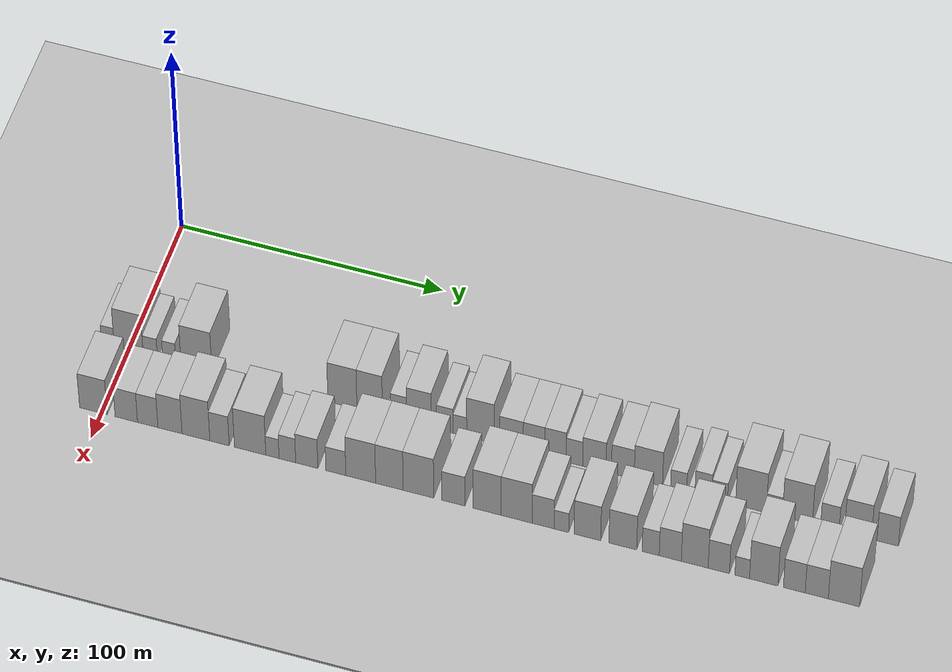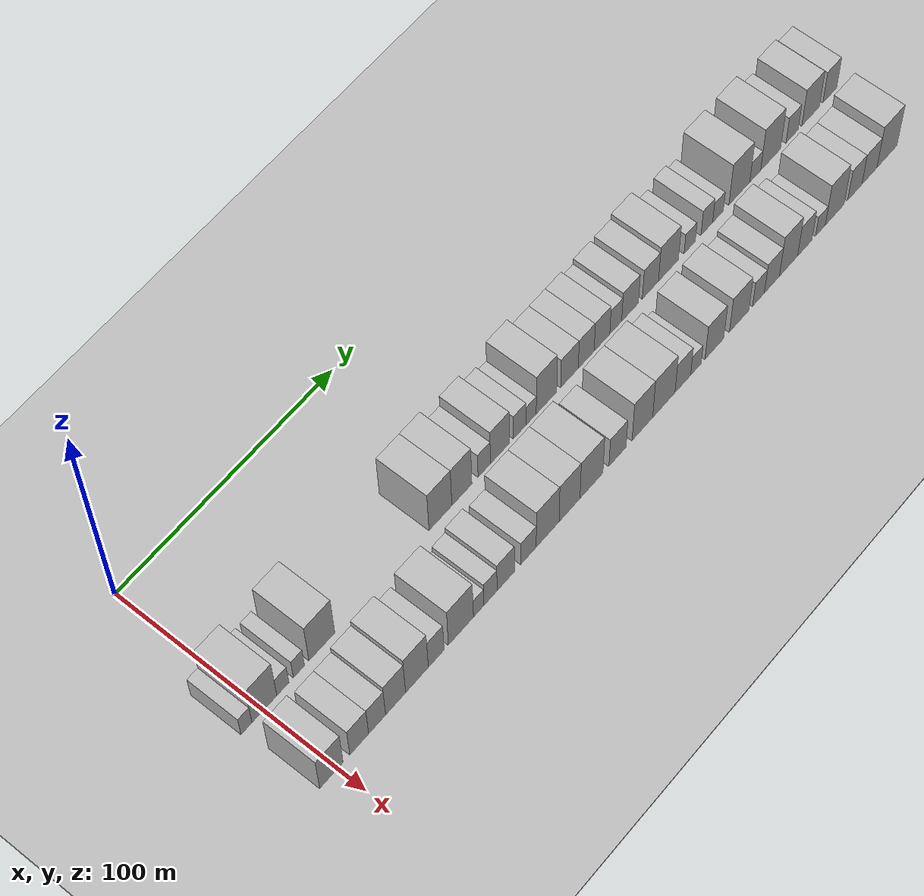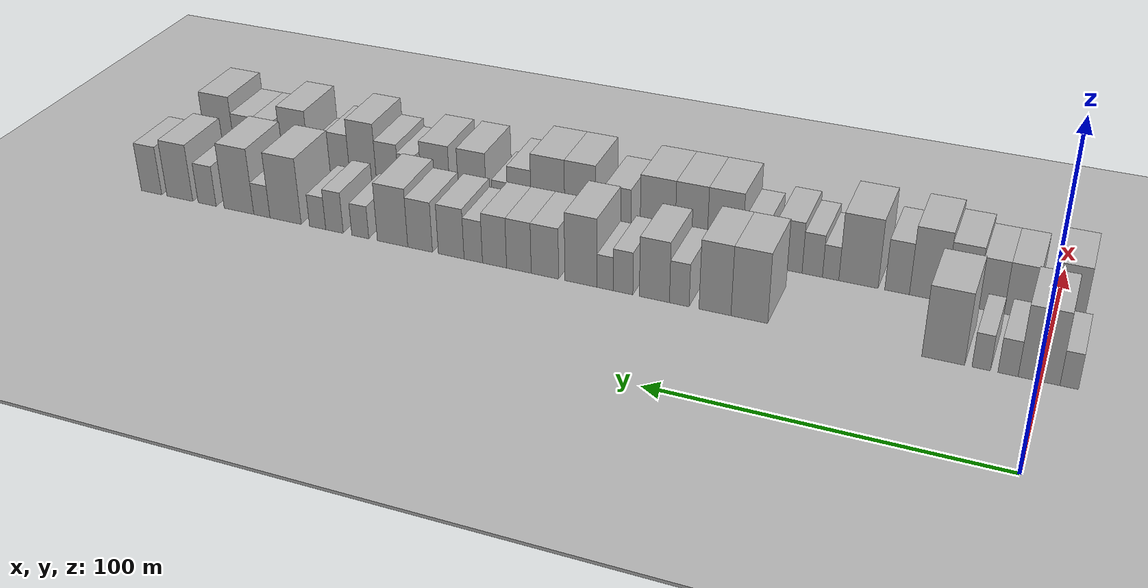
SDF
<sdf version="1.6">
 <world name="default">
  <include><name>ground_plane_1</name><uri>model://HANNAS_ground_plane</uri></include>
  <include>
   <name>ground_plane_2</name>
   <uri>model://HANNAS_ground_plane</uri>
   <pose>100 0 0  0 0 0</pose>
  </include>
  <model name="building_31">
   <static>1</static>
   <pose>50.0000 -7.6204 0 0.000000 0.000000 0.000000</pose>
   <link name="link">
    <pose>0 0 6.00 0 0 0</pose>
    <collision name="collision"><geometry><box><size>20.0000 4.8705 12.0000</size></box></geometry></collision>
    <visual name="visual">
     <cast_shadows>0</cast_shadows>
     <geometry><box><size>20.0000 4.8705 12.0000</size></box></geometry>
     <material>
      <script>
       <uri>model://HANNAS_wall/materials/scripts</uri>
       <uri>model://HANNAS_wall/materials/textures</uri>
       <name>vrc/HANNAS_wall</name>
      </script>
     </material>
    </visual>
   </link>
  </model>
  <model name="building_32">
   <static>1</static>
   <pose>50.0000 0.3281 0 0.000000 0.000000 0.000000</pose>
   <link name="link">
    <pose>0 0 12.00 0 0 0</pose>
    <collision name="collision"><geometry><box><size>20.0000 11.0267 24.0000</size></box></geometry></collision>
    <visual name="visual">
     <cast_shadows>0</cast_shadows>
     <geometry><box><size>20.0000 11.0267 24.0000</size></box></geometry>
     <material>
      <script>
       <uri>model://HANNAS_wall/materials/scripts</uri>
       <uri>model://HANNAS_wall/materials/textures</uri>
       <name>vrc/HANNAS_wall</name>
      </script>
     </material>
    </visual>
   </link>
  </model>
  <model name="building_33">
   <static>1</static>
   <pose>50.0000 8.5430 0 0.000000 0.000000 0.000000</pose>
   <link name="link">
    <pose>0 0 6.00 0 0 0</pose>
    <collision name="collision"><geometry><box><size>20.0000 5.4030 12.0000</size></box></geometry></collision>
    <visual name="visual">
     <cast_shadows>0</cast_shadows>
     <geometry><box><size>20.0000 5.4030 12.0000</size></box></geometry>
     <material>
      <script>
       <uri>model://HANNAS_wall/materials/scripts</uri>
       <uri>model://HANNAS_wall/materials/textures</uri>
       <name>vrc/HANNAS_wall</name>
      </script>
     </material>
    </visual>
   </link>
  </model>
  <model name="building_34">
   <static>1</static>
   <pose>50.0000 15.7394 0 0.000000 0.000000 0.000000</pose>
   <link name="link">
    <pose>0 0 6.00 0 0 0</pose>
    <collision name="collision"><geometry><box><size>20.0000 4.9897 12.0000</size></box></geometry></collision>
    <visual name="visual">
     <cast_shadows>0</cast_shadows>
     <geometry><box><size>20.0000 4.9897 12.0000</size></box></geometry>
     <material>
      <script>
       <uri>model://HANNAS_wall/materials/scripts</uri>
       <uri>model://HANNAS_wall/materials/textures</uri>
       <name>vrc/HANNAS_wall</name>
      </script>
     </material>
    </visual>
   </link>
  </model>
  <model name="building_35">
   <static>1</static>
   <pose>50.0000 26.1092 0 0.000000 0.000000 0.000000</pose>
   <link name="link">
    <pose>0 0 12.00 0 0 0</pose>
    <collision name="collision"><geometry><box><size>20.0000 11.7500 24.0000</size></box></geometry></collision>
    <visual name="visual">
     <cast_shadows>0</cast_shadows>
     <geometry><box><size>20.0000 11.7500 24.0000</size></box></geometry>
     <material>
      <script>
       <uri>model://HANNAS_wall/materials/scripts</uri>
       <uri>model://HANNAS_wall/materials/textures</uri>
       <name>vrc/HANNAS_wall</name>
      </script>
     </material>
    </visual>
   </link>
  </model>
  <model name="building_36">
   <static>1</static>
   <pose>50.0000 81.3536 0 0.000000 0.000000 0.000000</pose>
   <link name="link">
    <pose>0 0 12.00 0 0 0</pose>
    <collision name="collision"><geometry><box><size>20.0000 10.9129 24.0000</size></box></geometry></collision>
    <visual name="visual">
     <cast_shadows>0</cast_shadows>
     <geometry><box><size>20.0000 10.9129 24.0000</size></box></geometry>
     <material>
      <script>
       <uri>model://HANNAS_wall/materials/scripts</uri>
       <uri>model://HANNAS_wall/materials/textures</uri>
       <name>vrc/HANNAS_wall</name>
      </script>
     </material>
    </visual>
   </link>
  </model>
  <model name="building_37">
   <static>1</static>
   <pose>50.0000 91.6201 0 0.000000 0.000000 0.000000</pose>
   <link name="link">
    <pose>0 0 12.00 0 0 0</pose>
    <collision name="collision"><geometry><box><size>20.0000 9.6200 24.0000</size></box></geometry></collision>
    <visual name="visual">
     <cast_shadows>0</cast_shadows>
     <geometry><box><size>20.0000 9.6200 24.0000</size></box></geometry>
     <material>
      <script>
       <uri>model://HANNAS_wall/materials/scripts</uri>
       <uri>model://HANNAS_wall/materials/textures</uri>
       <name>vrc/HANNAS_wall</name>
      </script>
     </material>
    </visual>
   </link>
  </model>
  <model name="building_38">
   <static>1</static>
   <pose>50.0000 102.4375 0 0.000000 0.000000 0.000000</pose>
   <link name="link">
    <pose>0 0 7.50 0 0 0</pose>
    <collision name="collision"><geometry><box><size>20.0000 6.0148 15.0000</size></box></geometry></collision>
    <visual name="visual">
     <cast_shadows>0</cast_shadows>
     <geometry><box><size>20.0000 6.0148 15.0000</size></box></geometry>
     <material>
      <script>
       <uri>model://HANNAS_wall/materials/scripts</uri>
       <uri>model://HANNAS_wall/materials/textures</uri>
       <name>vrc/HANNAS_wall</name>
      </script>
     </material>
    </visual>
   </link>
  </model>
  <model name="building_39">
   <static>1</static>
   <pose>50.0000 110.0867 0 0.000000 0.000000 0.000000</pose>
   <link name="link">
    <pose>0 0 10.50 0 0 0</pose>
    <collision name="collision"><geometry><box><size>20.0000 9.2836 21.0000</size></box></geometry></collision>
    <visual name="visual">
     <cast_shadows>0</cast_shadows>
     <geometry><box><size>20.0000 9.2836 21.0000</size></box></geometry>
     <material>
      <script>
       <uri>model://HANNAS_wall/materials/scripts</uri>
       <uri>model://HANNAS_wall/materials/textures</uri>
       <name>vrc/HANNAS_wall</name>
      </script>
     </material>
    </visual>
   </link>
  </model>
  <model name="building_40">
   <static>1</static>
   <pose>50.0000 119.8254 0 0.000000 0.000000 0.000000</pose>
   <link name="link">
    <pose>0 0 7.50 0 0 0</pose>
    <collision name="collision"><geometry><box><size>20.0000 6.1937 15.0000</size></box></geometry></collision>
    <visual name="visual">
     <cast_shadows>0</cast_shadows>
     <geometry><box><size>20.0000 6.1937 15.0000</size></box></geometry>
     <material>
      <script>
       <uri>model://HANNAS_wall/materials/scripts</uri>
       <uri>model://HANNAS_wall/materials/textures</uri>
       <name>vrc/HANNAS_wall</name>
      </script>
     </material>
    </visual>
   </link>
  </model>
  <model name="building_41">
   <static>1</static>
   <pose>50.0000 125.4484 0 0.000000 0.000000 0.000000</pose>
   <link name="link">
    <pose>0 0 6.00 0 0 0</pose>
    <collision name="collision"><geometry><box><size>20.0000 5.0524 12.0000</size></box></geometry></collision>
    <visual name="visual">
     <cast_shadows>0</cast_shadows>
     <geometry><box><size>20.0000 5.0524 12.0000</size></box></geometry>
     <material>
      <script>
       <uri>model://HANNAS_wall/materials/scripts</uri>
       <uri>model://HANNAS_wall/materials/textures</uri>
       <name>vrc/HANNAS_wall</name>
      </script>
     </material>
    </visual>
   </link>
  </model>
  <model name="building_42">
   <static>1</static>
   <pose>50.0000 133.0787 0 0.000000 0.000000 0.000000</pose>
   <link name="link">
    <pose>0 0 12.00 0 0 0</pose>
    <collision name="collision"><geometry><box><size>20.0000 10.2081 24.0000</size></box></geometry></collision>
    <visual name="visual">
     <cast_shadows>0</cast_shadows>
     <geometry><box><size>20.0000 10.2081 24.0000</size></box></geometry>
     <material>
      <script>
       <uri>model://HANNAS_wall/materials/scripts</uri>
       <uri>model://HANNAS_wall/materials/textures</uri>
       <name>vrc/HANNAS_wall</name>
      </script>
     </material>
    </visual>
   </link>
  </model>
  <model name="building_43">
   <static>1</static>
   <pose>50.0000 144.6121 0 0.000000 0.000000 0.000000</pose>
   <link name="link">
    <pose>0 0 9.00 0 0 0</pose>
    <collision name="collision"><geometry><box><size>20.0000 8.8586 18.0000</size></box></geometry></collision>
    <visual name="visual">
     <cast_shadows>0</cast_shadows>
     <geometry><box><size>20.0000 8.8586 18.0000</size></box></geometry>
     <material>
      <script>
       <uri>model://HANNAS_wall/materials/scripts</uri>
       <uri>model://HANNAS_wall/materials/textures</uri>
       <name>vrc/HANNAS_wall</name>
      </script>
     </material>
    </visual>
   </link>
  </model>
  <model name="building_44">
   <static>1</static>
   <pose>50.0000 153.0716 0 0.000000 0.000000 0.000000</pose>
   <link name="link">
    <pose>0 0 9.00 0 0 0</pose>
    <collision name="collision"><geometry><box><size>20.0000 8.0604 18.0000</size></box></geometry></collision>
    <visual name="visual">
     <cast_shadows>0</cast_shadows>
     <geometry><box><size>20.0000 8.0604 18.0000</size></box></geometry>
     <material>
      <script>
       <uri>model://HANNAS_wall/materials/scripts</uri>
       <uri>model://HANNAS_wall/materials/textures</uri>
       <name>vrc/HANNAS_wall</name>
      </script>
     </material>
    </visual>
   </link>
  </model>
  <model name="building_45">
   <static>1</static>
   <pose>50.0000 161.0884 0 0.000000 0.000000 0.000000</pose>
   <link name="link">
    <pose>0 0 9.00 0 0 0</pose>
    <collision name="collision"><geometry><box><size>20.0000 7.9732 18.0000</size></box></geometry></collision>
    <visual name="visual">
     <cast_shadows>0</cast_shadows>
     <geometry><box><size>20.0000 7.9732 18.0000</size></box></geometry>
     <material>
      <script>
       <uri>model://HANNAS_wall/materials/scripts</uri>
       <uri>model://HANNAS_wall/materials/textures</uri>
       <name>vrc/HANNAS_wall</name>
      </script>
     </material>
    </visual>
   </link>
  </model>
  <model name="building_46">
   <static>1</static>
   <pose>50.0000 168.1415 0 0.000000 0.000000 0.000000</pose>
   <link name="link">
    <pose>0 0 7.50 0 0 0</pose>
    <collision name="collision"><geometry><box><size>20.0000 6.1328 15.0000</size></box></geometry></collision>
    <visual name="visual">
     <cast_shadows>0</cast_shadows>
     <geometry><box><size>20.0000 6.1328 15.0000</size></box></geometry>
     <material>
      <script>
       <uri>model://HANNAS_wall/materials/scripts</uri>
       <uri>model://HANNAS_wall/materials/textures</uri>
       <name>vrc/HANNAS_wall</name>
      </script>
     </material>
    </visual>
   </link>
  </model>
  <model name="building_47">
   <static>1</static>
   <pose>50.0000 175.5338 0 0.000000 0.000000 0.000000</pose>
   <link name="link">
    <pose>0 0 9.00 0 0 0</pose>
    <collision name="collision"><geometry><box><size>20.0000 8.6520 18.0000</size></box></geometry></collision>
    <visual name="visual">
     <cast_shadows>0</cast_shadows>
     <geometry><box><size>20.0000 8.6520 18.0000</size></box></geometry>
     <material>
      <script>
       <uri>model://HANNAS_wall/materials/scripts</uri>
       <uri>model://HANNAS_wall/materials/textures</uri>
       <name>vrc/HANNAS_wall</name>
      </script>
     </material>
    </visual>
   </link>
  </model>
  <model name="building_48">
   <static>1</static>
   <pose>50.0000 186.0772 0 0.000000 0.000000 0.000000</pose>
   <link name="link">
    <pose>0 0 9.00 0 0 0</pose>
    <collision name="collision"><geometry><box><size>20.0000 8.4348 18.0000</size></box></geometry></collision>
    <visual name="visual">
     <cast_shadows>0</cast_shadows>
     <geometry><box><size>20.0000 8.4348 18.0000</size></box></geometry>
     <material>
      <script>
       <uri>model://HANNAS_wall/materials/scripts</uri>
       <uri>model://HANNAS_wall/materials/textures</uri>
       <name>vrc/HANNAS_wall</name>
      </script>
     </material>
    </visual>
   </link>
  </model>
  <model name="building_49">
   <static>1</static>
   <pose>50.0000 195.5442 0 0.000000 0.000000 0.000000</pose>
   <link name="link">
    <pose>0 0 10.50 0 0 0</pose>
    <collision name="collision"><geometry><box><size>20.0000 10.4991 21.0000</size></box></geometry></collision>
    <visual name="visual">
     <cast_shadows>0</cast_shadows>
     <geometry><box><size>20.0000 10.4991 21.0000</size></box></geometry>
     <material>
      <script>
       <uri>model://HANNAS_wall/materials/scripts</uri>
       <uri>model://HANNAS_wall/materials/textures</uri>
       <name>vrc/HANNAS_wall</name>
      </script>
     </material>
    </visual>
   </link>
  </model>
  <model name="building_50">
   <static>1</static>
   <pose>50.0000 206.7703 0 0.000000 0.000000 0.000000</pose>
   <link name="link">
    <pose>0 0 6.00 0 0 0</pose>
    <collision name="collision"><geometry><box><size>20.0000 5.9532 12.0000</size></box></geometry></collision>
    <visual name="visual">
     <cast_shadows>0</cast_shadows>
     <geometry><box><size>20.0000 5.9532 12.0000</size></box></geometry>
     <material>
      <script>
       <uri>model://HANNAS_wall/materials/scripts</uri>
       <uri>model://HANNAS_wall/materials/textures</uri>
       <name>vrc/HANNAS_wall</name>
      </script>
     </material>
    </visual>
   </link>
  </model>
  <model name="building_51">
   <static>1</static>
   <pose>50.0000 215.8573 0 0.000000 0.000000 0.000000</pose>
   <link name="link">
    <pose>0 0 7.50 0 0 0</pose>
    <collision name="collision"><geometry><box><size>20.0000 6.2208 15.0000</size></box></geometry></collision>
    <visual name="visual">
     <cast_shadows>0</cast_shadows>
     <geometry><box><size>20.0000 6.2208 15.0000</size></box></geometry>
     <material>
      <script>
       <uri>model://HANNAS_wall/materials/scripts</uri>
       <uri>model://HANNAS_wall/materials/textures</uri>
       <name>vrc/HANNAS_wall</name>
      </script>
     </material>
    </visual>
   </link>
  </model>
  <model name="building_52">
   <static>1</static>
   <pose>50.0000 221.8595 0 0.000000 0.000000 0.000000</pose>
   <link name="link">
    <pose>0 0 6.00 0 0 0</pose>
    <collision name="collision"><geometry><box><size>20.0000 5.7837 12.0000</size></box></geometry></collision>
    <visual name="visual">
     <cast_shadows>0</cast_shadows>
     <geometry><box><size>20.0000 5.7837 12.0000</size></box></geometry>
     <material>
      <script>
       <uri>model://HANNAS_wall/materials/scripts</uri>
       <uri>model://HANNAS_wall/materials/textures</uri>
       <name>vrc/HANNAS_wall</name>
      </script>
     </material>
    </visual>
   </link>
  </model>
  <model name="building_53">
   <static>1</static>
   <pose>50.0000 233.4132 0 0.000000 0.000000 0.000000</pose>
   <link name="link">
    <pose>0 0 12.00 0 0 0</pose>
    <collision name="collision"><geometry><box><size>20.0000 11.3236 24.0000</size></box></geometry></collision>
    <visual name="visual">
     <cast_shadows>0</cast_shadows>
     <geometry><box><size>20.0000 11.3236 24.0000</size></box></geometry>
     <material>
      <script>
       <uri>model://HANNAS_wall/materials/scripts</uri>
       <uri>model://HANNAS_wall/materials/textures</uri>
       <name>vrc/HANNAS_wall</name>
      </script>
     </material>
    </visual>
   </link>
  </model>
  <model name="building_54">
   <static>1</static>
   <pose>50.0000 242.0458 0 0.000000 0.000000 0.000000</pose>
   <link name="link">
    <pose>0 0 6.00 0 0 0</pose>
    <collision name="collision"><geometry><box><size>20.0000 5.9414 12.0000</size></box></geometry></collision>
    <visual name="visual">
     <cast_shadows>0</cast_shadows>
     <geometry><box><size>20.0000 5.9414 12.0000</size></box></geometry>
     <material>
      <script>
       <uri>model://HANNAS_wall/materials/scripts</uri>
       <uri>model://HANNAS_wall/materials/textures</uri>
       <name>vrc/HANNAS_wall</name>
      </script>
     </material>
    </visual>
   </link>
  </model>
  <model name="building_55">
   <static>1</static>
   <pose>50.0000 250.5030 0 0.000000 0.000000 0.000000</pose>
   <link name="link">
    <pose>0 0 12.00 0 0 0</pose>
    <collision name="collision"><geometry><box><size>20.0000 10.9730 24.0000</size></box></geometry></collision>
    <visual name="visual">
     <cast_shadows>0</cast_shadows>
     <geometry><box><size>20.0000 10.9730 24.0000</size></box></geometry>
     <material>
      <script>
       <uri>model://HANNAS_wall/materials/scripts</uri>
       <uri>model://HANNAS_wall/materials/textures</uri>
       <name>vrc/HANNAS_wall</name>
      </script>
     </material>
    </visual>
   </link>
  </model>
  <model name="building_56">
   <static>1</static>
   <pose>50.0000 262.3821 0 0.000000 0.000000 0.000000</pose>
   <link name="link">
    <pose>0 0 7.50 0 0 0</pose>
    <collision name="collision"><geometry><box><size>20.0000 6.7853 15.0000</size></box></geometry></collision>
    <visual name="visual">
     <cast_shadows>0</cast_shadows>
     <geometry><box><size>20.0000 6.7853 15.0000</size></box></geometry>
     <material>
      <script>
       <uri>model://HANNAS_wall/materials/scripts</uri>
       <uri>model://HANNAS_wall/materials/textures</uri>
       <name>vrc/HANNAS_wall</name>
      </script>
     </material>
    </visual>
   </link>
  </model>
  <model name="building_57">
   <static>1</static>
   <pose>50.0000 272.6930 0 0.000000 0.000000 0.000000</pose>
   <link name="link">
    <pose>0 0 10.50 0 0 0</pose>
    <collision name="collision"><geometry><box><size>20.0000 9.8365 21.0000</size></box></geometry></collision>
    <visual name="visual">
     <cast_shadows>0</cast_shadows>
     <geometry><box><size>20.0000 9.8365 21.0000</size></box></geometry>
     <material>
      <script>
       <uri>model://HANNAS_wall/materials/scripts</uri>
       <uri>model://HANNAS_wall/materials/textures</uri>
       <name>vrc/HANNAS_wall</name>
      </script>
     </material>
    </visual>
   </link>
  </model>
  <model name="building_58">
   <static>1</static>
   <pose>50.0000 283.5262 0 0.000000 0.000000 0.000000</pose>
   <link name="link">
    <pose>0 0 9.00 0 0 0</pose>
    <collision name="collision"><geometry><box><size>20.0000 7.8297 18.0000</size></box></geometry></collision>
    <visual name="visual">
     <cast_shadows>0</cast_shadows>
     <geometry><box><size>20.0000 7.8297 18.0000</size></box></geometry>
     <material>
      <script>
       <uri>model://HANNAS_wall/materials/scripts</uri>
       <uri>model://HANNAS_wall/materials/textures</uri>
       <name>vrc/HANNAS_wall</name>
      </script>
     </material>
    </visual>
   </link>
  </model>
  <model name="building_87">
   <static>1</static>
   <pose>79.0000 -2.9173 0 0.000000 0.000000 0.000000</pose>
   <link name="link">
    <pose>0 0 10.50 0 0 0</pose>
    <collision name="collision"><geometry><box><size>20.0000 10.4414 21.0000</size></box></geometry></collision>
    <visual name="visual">
     <cast_shadows>0</cast_shadows>
     <geometry><box><size>20.0000 10.4414 21.0000</size></box></geometry>
     <material>
      <script>
       <uri>model://HANNAS_wall/materials/scripts</uri>
       <uri>model://HANNAS_wall/materials/textures</uri>
       <name>vrc/HANNAS_wall</name>
      </script>
     </material>
    </visual>
   </link>
  </model>
  <model name="building_88">
   <static>1</static>
   <pose>79.0000 9.5362 0 0.000000 0.000000 0.000000</pose>
   <link name="link">
    <pose>0 0 9.00 0 0 0</pose>
    <collision name="collision"><geometry><box><size>20.0000 8.4656 18.0000</size></box></geometry></collision>
    <visual name="visual">
     <cast_shadows>0</cast_shadows>
     <geometry><box><size>20.0000 8.4656 18.0000</size></box></geometry>
     <material>
      <script>
       <uri>model://HANNAS_wall/materials/scripts</uri>
       <uri>model://HANNAS_wall/materials/textures</uri>
       <name>vrc/HANNAS_wall</name>
      </script>
     </material>
    </visual>
   </link>
  </model>
  <model name="building_89">
   <static>1</static>
   <pose>79.0000 17.6183 0 0.000000 0.000000 0.000000</pose>
   <link name="link">
    <pose>0 0 9.00 0 0 0</pose>
    <collision name="collision"><geometry><box><size>20.0000 7.6988 18.0000</size></box></geometry></collision>
    <visual name="visual">
     <cast_shadows>0</cast_shadows>
     <geometry><box><size>20.0000 7.6988 18.0000</size></box></geometry>
     <material>
      <script>
       <uri>model://HANNAS_wall/materials/scripts</uri>
       <uri>model://HANNAS_wall/materials/textures</uri>
       <name>vrc/HANNAS_wall</name>
      </script>
     </material>
    </visual>
   </link>
  </model>
  <model name="building_90">
   <static>1</static>
   <pose>79.0000 26.0335 0 0.000000 0.000000 0.000000</pose>
   <link name="link">
    <pose>0 0 10.50 0 0 0</pose>
    <collision name="collision"><geometry><box><size>20.0000 9.1314 21.0000</size></box></geometry></collision>
    <visual name="visual">
     <cast_shadows>0</cast_shadows>
     <geometry><box><size>20.0000 9.1314 21.0000</size></box></geometry>
     <material>
      <script>
       <uri>model://HANNAS_wall/materials/scripts</uri>
       <uri>model://HANNAS_wall/materials/textures</uri>
       <name>vrc/HANNAS_wall</name>
      </script>
     </material>
    </visual>
   </link>
  </model>
  <model name="building_91">
   <static>1</static>
   <pose>79.0000 35.8328 0 0.000000 0.000000 0.000000</pose>
   <link name="link">
    <pose>0 0 12.00 0 0 0</pose>
    <collision name="collision"><geometry><box><size>20.0000 10.4672 24.0000</size></box></geometry></collision>
    <visual name="visual">
     <cast_shadows>0</cast_shadows>
     <geometry><box><size>20.0000 10.4672 24.0000</size></box></geometry>
     <material>
      <script>
       <uri>model://HANNAS_wall/materials/scripts</uri>
       <uri>model://HANNAS_wall/materials/textures</uri>
       <name>vrc/HANNAS_wall</name>
      </script>
     </material>
    </visual>
   </link>
  </model>
  <model name="building_92">
   <static>1</static>
   <pose>79.0000 44.7057 0 0.000000 0.000000 0.000000</pose>
   <link name="link">
    <pose>0 0 9.00 0 0 0</pose>
    <collision name="collision"><geometry><box><size>20.0000 7.2788 18.0000</size></box></geometry></collision>
    <visual name="visual">
     <cast_shadows>0</cast_shadows>
     <geometry><box><size>20.0000 7.2788 18.0000</size></box></geometry>
     <material>
      <script>
       <uri>model://HANNAS_wall/materials/scripts</uri>
       <uri>model://HANNAS_wall/materials/textures</uri>
       <name>vrc/HANNAS_wall</name>
      </script>
     </material>
    </visual>
   </link>
  </model>
  <model name="building_93">
   <static>1</static>
   <pose>79.0000 56.2379 0 0.000000 0.000000 0.000000</pose>
   <link name="link">
    <pose>0 0 12.00 0 0 0</pose>
    <collision name="collision"><geometry><box><size>20.0000 11.7855 24.0000</size></box></geometry></collision>
    <visual name="visual">
     <cast_shadows>0</cast_shadows>
     <geometry><box><size>20.0000 11.7855 24.0000</size></box></geometry>
     <material>
      <script>
       <uri>model://HANNAS_wall/materials/scripts</uri>
       <uri>model://HANNAS_wall/materials/textures</uri>
       <name>vrc/HANNAS_wall</name>
      </script>
     </material>
    </visual>
   </link>
  </model>
  <model name="building_94">
   <static>1</static>
   <pose>79.0000 64.6106 0 0.000000 0.000000 0.000000</pose>
   <link name="link">
    <pose>0 0 6.00 0 0 0</pose>
    <collision name="collision"><geometry><box><size>20.0000 4.9600 12.0000</size></box></geometry></collision>
    <visual name="visual">
     <cast_shadows>0</cast_shadows>
     <geometry><box><size>20.0000 4.9600 12.0000</size></box></geometry>
     <material>
      <script>
       <uri>model://HANNAS_wall/materials/scripts</uri>
       <uri>model://HANNAS_wall/materials/textures</uri>
       <name>vrc/HANNAS_wall</name>
      </script>
     </material>
    </visual>
   </link>
  </model>
  <model name="building_95">
   <static>1</static>
   <pose>79.0000 70.2142 0 0.000000 0.000000 0.000000</pose>
   <link name="link">
    <pose>0 0 7.50 0 0 0</pose>
    <collision name="collision"><geometry><box><size>20.0000 6.2472 15.0000</size></box></geometry></collision>
    <visual name="visual">
     <cast_shadows>0</cast_shadows>
     <geometry><box><size>20.0000 6.2472 15.0000</size></box></geometry>
     <material>
      <script>
       <uri>model://HANNAS_wall/materials/scripts</uri>
       <uri>model://HANNAS_wall/materials/textures</uri>
       <name>vrc/HANNAS_wall</name>
      </script>
     </material>
    </visual>
   </link>
  </model>
  <model name="building_96">
   <static>1</static>
   <pose>79.0000 77.4870 0 0.000000 0.000000 0.000000</pose>
   <link name="link">
    <pose>0 0 9.00 0 0 0</pose>
    <collision name="collision"><geometry><box><size>20.0000 8.2982 18.0000</size></box></geometry></collision>
    <visual name="visual">
     <cast_shadows>0</cast_shadows>
     <geometry><box><size>20.0000 8.2982 18.0000</size></box></geometry>
     <material>
      <script>
       <uri>model://HANNAS_wall/materials/scripts</uri>
       <uri>model://HANNAS_wall/materials/textures</uri>
       <name>vrc/HANNAS_wall</name>
      </script>
     </material>
    </visual>
   </link>
  </model>
  <model name="building_97">
   <static>1</static>
   <pose>79.0000 88.3670 0 0.000000 0.000000 0.000000</pose>
   <link name="link">
    <pose>0 0 7.50 0 0 0</pose>
    <collision name="collision"><geometry><box><size>20.0000 7.4618 15.0000</size></box></geometry></collision>
    <visual name="visual">
     <cast_shadows>0</cast_shadows>
     <geometry><box><size>20.0000 7.4618 15.0000</size></box></geometry>
     <material>
      <script>
       <uri>model://HANNAS_wall/materials/scripts</uri>
       <uri>model://HANNAS_wall/materials/textures</uri>
       <name>vrc/HANNAS_wall</name>
      </script>
     </material>
    </visual>
   </link>
  </model>
  <model name="building_98">
   <static>1</static>
   <pose>79.0000 97.6599 0 0.000000 0.000000 0.000000</pose>
   <link name="link">
    <pose>0 0 12.00 0 0 0</pose>
    <collision name="collision"><geometry><box><size>20.0000 11.1241 24.0000</size></box></geometry></collision>
    <visual name="visual">
     <cast_shadows>0</cast_shadows>
     <geometry><box><size>20.0000 11.1241 24.0000</size></box></geometry>
     <material>
      <script>
       <uri>model://HANNAS_wall/materials/scripts</uri>
       <uri>model://HANNAS_wall/materials/textures</uri>
       <name>vrc/HANNAS_wall</name>
      </script>
     </material>
    </visual>
   </link>
  </model>
  <model name="building_99">
   <static>1</static>
   <pose>79.0000 108.3600 0 0.000000 0.000000 0.000000</pose>
   <link name="link">
    <pose>0 0 12.00 0 0 0</pose>
    <collision name="collision"><geometry><box><size>20.0000 10.2760 24.0000</size></box></geometry></collision>
    <visual name="visual">
     <cast_shadows>0</cast_shadows>
     <geometry><box><size>20.0000 10.2760 24.0000</size></box></geometry>
     <material>
      <script>
       <uri>model://HANNAS_wall/materials/scripts</uri>
       <uri>model://HANNAS_wall/materials/textures</uri>
       <name>vrc/HANNAS_wall</name>
      </script>
     </material>
    </visual>
   </link>
  </model>
  <model name="building_100">
   <static>1</static>
   <pose>79.0000 119.1718 0 0.000000 0.000000 0.000000</pose>
   <link name="link">
    <pose>0 0 12.00 0 0 0</pose>
    <collision name="collision"><geometry><box><size>20.0000 11.3477 24.0000</size></box></geometry></collision>
    <visual name="visual">
     <cast_shadows>0</cast_shadows>
     <geometry><box><size>20.0000 11.3477 24.0000</size></box></geometry>
     <material>
      <script>
       <uri>model://HANNAS_wall/materials/scripts</uri>
       <uri>model://HANNAS_wall/materials/textures</uri>
       <name>vrc/HANNAS_wall</name>
      </script>
     </material>
    </visual>
   </link>
  </model>
  <model name="building_101">
   <static>1</static>
   <pose>79.0000 132.1563 0 0.000000 0.000000 0.000000</pose>
   <link name="link">
    <pose>0 0 9.00 0 0 0</pose>
    <collision name="collision"><geometry><box><size>20.0000 8.6214 18.0000</size></box></geometry></collision>
    <visual name="visual">
     <cast_shadows>0</cast_shadows>
     <geometry><box><size>20.0000 8.6214 18.0000</size></box></geometry>
     <material>
      <script>
       <uri>model://HANNAS_wall/materials/scripts</uri>
       <uri>model://HANNAS_wall/materials/textures</uri>
       <name>vrc/HANNAS_wall</name>
      </script>
     </material>
    </visual>
   </link>
  </model>
  <model name="building_102">
   <static>1</static>
   <pose>79.0000 144.6765 0 0.000000 0.000000 0.000000</pose>
   <link name="link">
    <pose>0 0 12.00 0 0 0</pose>
    <collision name="collision"><geometry><box><size>20.0000 10.4190 24.0000</size></box></geometry></collision>
    <visual name="visual">
     <cast_shadows>0</cast_shadows>
     <geometry><box><size>20.0000 10.4190 24.0000</size></box></geometry>
     <material>
      <script>
       <uri>model://HANNAS_wall/materials/scripts</uri>
       <uri>model://HANNAS_wall/materials/textures</uri>
       <name>vrc/HANNAS_wall</name>
      </script>
     </material>
    </visual>
   </link>
  </model>
  <model name="building_103">
   <static>1</static>
   <pose>79.0000 155.5971 0 0.000000 0.000000 0.000000</pose>
   <link name="link">
    <pose>0 0 12.00 0 0 0</pose>
    <collision name="collision"><geometry><box><size>20.0000 11.4221 24.0000</size></box></geometry></collision>
    <visual name="visual">
     <cast_shadows>0</cast_shadows>
     <geometry><box><size>20.0000 11.4221 24.0000</size></box></geometry>
     <material>
      <script>
       <uri>model://HANNAS_wall/materials/scripts</uri>
       <uri>model://HANNAS_wall/materials/textures</uri>
       <name>vrc/HANNAS_wall</name>
      </script>
     </material>
    </visual>
   </link>
  </model>
  <model name="building_104">
   <static>1</static>
   <pose>79.0000 165.3561 0 0.000000 0.000000 0.000000</pose>
   <link name="link">
    <pose>0 0 9.00 0 0 0</pose>
    <collision name="collision"><geometry><box><size>20.0000 8.0958 18.0000</size></box></geometry></collision>
    <visual name="visual">
     <cast_shadows>0</cast_shadows>
     <geometry><box><size>20.0000 8.0958 18.0000</size></box></geometry>
     <material>
      <script>
       <uri>model://HANNAS_wall/materials/scripts</uri>
       <uri>model://HANNAS_wall/materials/textures</uri>
       <name>vrc/HANNAS_wall</name>
      </script>
     </material>
    </visual>
   </link>
  </model>
  <model name="building_105">
   <static>1</static>
   <pose>79.0000 172.1129 0 0.000000 0.000000 0.000000</pose>
   <link name="link">
    <pose>0 0 6.00 0 0 0</pose>
    <collision name="collision"><geometry><box><size>20.0000 5.4178 12.0000</size></box></geometry></collision>
    <visual name="visual">
     <cast_shadows>0</cast_shadows>
     <geometry><box><size>20.0000 5.4178 12.0000</size></box></geometry>
     <material>
      <script>
       <uri>model://HANNAS_wall/materials/scripts</uri>
       <uri>model://HANNAS_wall/materials/textures</uri>
       <name>vrc/HANNAS_wall</name>
      </script>
     </material>
    </visual>
   </link>
  </model>
  <model name="building_106">
   <static>1</static>
   <pose>79.0000 181.7265 0 0.000000 0.000000 0.000000</pose>
   <link name="link">
    <pose>0 0 10.50 0 0 0</pose>
    <collision name="collision"><geometry><box><size>20.0000 9.8094 21.0000</size></box></geometry></collision>
    <visual name="visual">
     <cast_shadows>0</cast_shadows>
     <geometry><box><size>20.0000 9.8094 21.0000</size></box></geometry>
     <material>
      <script>
       <uri>model://HANNAS_wall/materials/scripts</uri>
       <uri>model://HANNAS_wall/materials/textures</uri>
       <name>vrc/HANNAS_wall</name>
      </script>
     </material>
    </visual>
   </link>
  </model>
  <model name="building_107">
   <static>1</static>
   <pose>79.0000 194.7400 0 0.000000 0.000000 0.000000</pose>
   <link name="link">
    <pose>0 0 10.50 0 0 0</pose>
    <collision name="collision"><geometry><box><size>20.0000 10.2177 21.0000</size></box></geometry></collision>
    <visual name="visual">
     <cast_shadows>0</cast_shadows>
     <geometry><box><size>20.0000 10.2177 21.0000</size></box></geometry>
     <material>
      <script>
       <uri>model://HANNAS_wall/materials/scripts</uri>
       <uri>model://HANNAS_wall/materials/textures</uri>
       <name>vrc/HANNAS_wall</name>
      </script>
     </material>
    </visual>
   </link>
  </model>
  <model name="building_108">
   <static>1</static>
   <pose>79.0000 204.9880 0 0.000000 0.000000 0.000000</pose>
   <link name="link">
    <pose>0 0 7.50 0 0 0</pose>
    <collision name="collision"><geometry><box><size>20.0000 6.2783 15.0000</size></box></geometry></collision>
    <visual name="visual">
     <cast_shadows>0</cast_shadows>
     <geometry><box><size>20.0000 6.2783 15.0000</size></box></geometry>
     <material>
      <script>
       <uri>model://HANNAS_wall/materials/scripts</uri>
       <uri>model://HANNAS_wall/materials/textures</uri>
       <name>vrc/HANNAS_wall</name>
      </script>
     </material>
    </visual>
   </link>
  </model>
  <model name="building_109">
   <static>1</static>
   <pose>79.0000 212.1808 0 0.000000 0.000000 0.000000</pose>
   <link name="link">
    <pose>0 0 9.00 0 0 0</pose>
    <collision name="collision"><geometry><box><size>20.0000 8.1073 18.0000</size></box></geometry></collision>
    <visual name="visual">
     <cast_shadows>0</cast_shadows>
     <geometry><box><size>20.0000 8.1073 18.0000</size></box></geometry>
     <material>
      <script>
       <uri>model://HANNAS_wall/materials/scripts</uri>
       <uri>model://HANNAS_wall/materials/textures</uri>
       <name>vrc/HANNAS_wall</name>
      </script>
     </material>
    </visual>
   </link>
  </model>
  <model name="building_110">
   <static>1</static>
   <pose>79.0000 221.1583 0 0.000000 0.000000 0.000000</pose>
   <link name="link">
    <pose>0 0 12.00 0 0 0</pose>
    <collision name="collision"><geometry><box><size>20.0000 9.8478 24.0000</size></box></geometry></collision>
    <visual name="visual">
     <cast_shadows>0</cast_shadows>
     <geometry><box><size>20.0000 9.8478 24.0000</size></box></geometry>
     <material>
      <script>
       <uri>model://HANNAS_wall/materials/scripts</uri>
       <uri>model://HANNAS_wall/materials/textures</uri>
       <name>vrc/HANNAS_wall</name>
      </script>
     </material>
    </visual>
   </link>
  </model>
  <model name="building_111">
   <static>1</static>
   <pose>79.0000 229.9709 0 0.000000 0.000000 0.000000</pose>
   <link name="link">
    <pose>0 0 9.00 0 0 0</pose>
    <collision name="collision"><geometry><box><size>20.0000 7.7773 18.0000</size></box></geometry></collision>
    <visual name="visual">
     <cast_shadows>0</cast_shadows>
     <geometry><box><size>20.0000 7.7773 18.0000</size></box></geometry>
     <material>
      <script>
       <uri>model://HANNAS_wall/materials/scripts</uri>
       <uri>model://HANNAS_wall/materials/textures</uri>
       <name>vrc/HANNAS_wall</name>
      </script>
     </material>
    </visual>
   </link>
  </model>
  <model name="building_112">
   <static>1</static>
   <pose>79.0000 238.5228 0 0.000000 0.000000 0.000000</pose>
   <link name="link">
    <pose>0 0 6.00 0 0 0</pose>
    <collision name="collision"><geometry><box><size>20.0000 5.3265 12.0000</size></box></geometry></collision>
    <visual name="visual">
     <cast_shadows>0</cast_shadows>
     <geometry><box><size>20.0000 5.3265 12.0000</size></box></geometry>
     <material>
      <script>
       <uri>model://HANNAS_wall/materials/scripts</uri>
       <uri>model://HANNAS_wall/materials/textures</uri>
       <name>vrc/HANNAS_wall</name>
      </script>
     </material>
    </visual>
   </link>
  </model>
  <model name="building_113">
   <static>1</static>
   <pose>79.0000 246.3703 0 0.000000 0.000000 0.000000</pose>
   <link name="link">
    <pose>0 0 12.00 0 0 0</pose>
    <collision name="collision"><geometry><box><size>20.0000 10.3686 24.0000</size></box></geometry></collision>
    <visual name="visual">
     <cast_shadows>0</cast_shadows>
     <geometry><box><size>20.0000 10.3686 24.0000</size></box></geometry>
     <material>
      <script>
       <uri>model://HANNAS_wall/materials/scripts</uri>
       <uri>model://HANNAS_wall/materials/textures</uri>
       <name>vrc/HANNAS_wall</name>
      </script>
     </material>
    </visual>
   </link>
  </model>
  <model name="building_114">
   <static>1</static>
   <pose>79.0000 257.5162 0 0.000000 0.000000 0.000000</pose>
   <link name="link">
    <pose>0 0 9.00 0 0 0</pose>
    <collision name="collision"><geometry><box><size>20.0000 7.9232 18.0000</size></box></geometry></collision>
    <visual name="visual">
     <cast_shadows>0</cast_shadows>
     <geometry><box><size>20.0000 7.9232 18.0000</size></box></geometry>
     <material>
      <script>
       <uri>model://HANNAS_wall/materials/scripts</uri>
       <uri>model://HANNAS_wall/materials/textures</uri>
       <name>vrc/HANNAS_wall</name>
      </script>
     </material>
    </visual>
   </link>
  </model>
  <model name="building_115">
   <static>1</static>
   <pose>79.0000 265.6783 0 0.000000 0.000000 0.000000</pose>
   <link name="link">
    <pose>0 0 9.00 0 0 0</pose>
    <collision name="collision"><geometry><box><size>20.0000 8.4010 18.0000</size></box></geometry></collision>
    <visual name="visual">
     <cast_shadows>0</cast_shadows>
     <geometry><box><size>20.0000 8.4010 18.0000</size></box></geometry>
     <material>
      <script>
       <uri>model://HANNAS_wall/materials/scripts</uri>
       <uri>model://HANNAS_wall/materials/textures</uri>
       <name>vrc/HANNAS_wall</name>
      </script>
     </material>
    </visual>
   </link>
  </model>
  <model name="building_116">
   <static>1</static>
   <pose>79.0000 275.5676 0 0.000000 0.000000 0.000000</pose>
   <link name="link">
    <pose>0 0 12.00 0 0 0</pose>
    <collision name="collision"><geometry><box><size>20.0000 11.3777 24.0000</size></box></geometry></collision>
    <visual name="visual">
     <cast_shadows>0</cast_shadows>
     <geometry><box><size>20.0000 11.3777 24.0000</size></box></geometry>
     <material>
      <script>
       <uri>model://HANNAS_wall/materials/scripts</uri>
       <uri>model://HANNAS_wall/materials/textures</uri>
       <name>vrc/HANNAS_wall</name>
      </script>
     </material>
    </visual>
   </link>
  </model>
 </world>
</sdf>
